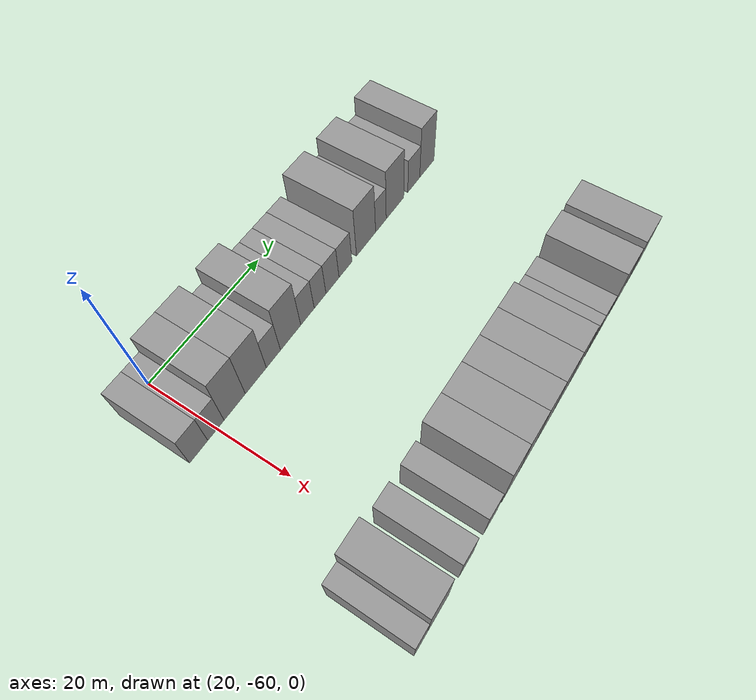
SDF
<sdf version="1.6">
 <world name="default">
  <model name="building_43">
   <static>1</static>
   <pose>25.0000 -63.1115 0 0.000000 0.000000 0.000000</pose>
   <link name="link">
    <pose>0 0 3.00 0 0 0</pose>
    <collision name="collision"><geometry><box><size>10.0000 2.9955 6.0000</size></box></geometry></collision>
    <visual name="visual">
     <cast_shadows>0</cast_shadows>
     <geometry><box><size>10.0000 2.9955 6.0000</size></box></geometry>
     <material>
      <script>
       <uri>model://grey_wall/materials/scripts</uri>
       <uri>model://grey_wall/materials/textures</uri>
       <name>vrc/grey_wall</name>
      </script>
     </material>
    </visual>
   </link>
  </model>
  <model name="building_44">
   <static>1</static>
   <pose>25.0000 -60.2271 0 0.000000 0.000000 0.000000</pose>
   <link name="link">
    <pose>0 0 3.00 0 0 0</pose>
    <collision name="collision"><geometry><box><size>10.0000 2.7734 6.0000</size></box></geometry></collision>
    <visual name="visual">
     <cast_shadows>0</cast_shadows>
     <geometry><box><size>10.0000 2.7734 6.0000</size></box></geometry>
     <material>
      <script>
       <uri>model://grey_wall/materials/scripts</uri>
       <uri>model://grey_wall/materials/textures</uri>
       <name>vrc/grey_wall</name>
      </script>
     </material>
    </visual>
   </link>
  </model>
  <model name="building_45">
   <static>1</static>
   <pose>25.0000 -56.9690 0 0.000000 0.000000 0.000000</pose>
   <link name="link">
    <pose>0 0 4.50 0 0 0</pose>
    <collision name="collision"><geometry><box><size>10.0000 3.7427 9.0000</size></box></geometry></collision>
    <visual name="visual">
     <cast_shadows>0</cast_shadows>
     <geometry><box><size>10.0000 3.7427 9.0000</size></box></geometry>
     <material>
      <script>
       <uri>model://grey_wall/materials/scripts</uri>
       <uri>model://grey_wall/materials/textures</uri>
       <name>vrc/grey_wall</name>
      </script>
     </material>
    </visual>
   </link>
  </model>
  <model name="building_46">
   <static>1</static>
   <pose>25.0000 -53.1813 0 0.000000 0.000000 0.000000</pose>
   <link name="link">
    <pose>0 0 4.50 0 0 0</pose>
    <collision name="collision"><geometry><box><size>10.0000 3.8327 9.0000</size></box></geometry></collision>
    <visual name="visual">
     <cast_shadows>0</cast_shadows>
     <geometry><box><size>10.0000 3.8327 9.0000</size></box></geometry>
     <material>
      <script>
       <uri>model://grey_wall/materials/scripts</uri>
       <uri>model://grey_wall/materials/textures</uri>
       <name>vrc/grey_wall</name>
      </script>
     </material>
    </visual>
   </link>
  </model>
  <model name="building_47">
   <static>1</static>
   <pose>25.0000 -49.9256 0 0.000000 0.000000 0.000000</pose>
   <link name="link">
    <pose>0 0 3.00 0 0 0</pose>
    <collision name="collision"><geometry><box><size>10.0000 2.6787 6.0000</size></box></geometry></collision>
    <visual name="visual">
     <cast_shadows>0</cast_shadows>
     <geometry><box><size>10.0000 2.6787 6.0000</size></box></geometry>
     <material>
      <script>
       <uri>model://grey_wall/materials/scripts</uri>
       <uri>model://grey_wall/materials/textures</uri>
       <name>vrc/grey_wall</name>
      </script>
     </material>
    </visual>
   </link>
  </model>
  <model name="building_48">
   <static>1</static>
   <pose>25.0000 -46.6115 0 0.000000 0.000000 0.000000</pose>
   <link name="link">
    <pose>0 0 4.50 0 0 0</pose>
    <collision name="collision"><geometry><box><size>10.0000 3.9495 9.0000</size></box></geometry></collision>
    <visual name="visual">
     <cast_shadows>0</cast_shadows>
     <geometry><box><size>10.0000 3.9495 9.0000</size></box></geometry>
     <material>
      <script>
       <uri>model://grey_wall/materials/scripts</uri>
       <uri>model://grey_wall/materials/textures</uri>
       <name>vrc/grey_wall</name>
      </script>
     </material>
    </visual>
   </link>
  </model>
  <model name="building_49">
   <static>1</static>
   <pose>25.0000 -43.2790 0 0.000000 0.000000 0.000000</pose>
   <link name="link">
    <pose>0 0 3.00 0 0 0</pose>
    <collision name="collision"><geometry><box><size>10.0000 2.7157 6.0000</size></box></geometry></collision>
    <visual name="visual">
     <cast_shadows>0</cast_shadows>
     <geometry><box><size>10.0000 2.7157 6.0000</size></box></geometry>
     <material>
      <script>
       <uri>model://grey_wall/materials/scripts</uri>
       <uri>model://grey_wall/materials/textures</uri>
       <name>vrc/grey_wall</name>
      </script>
     </material>
    </visual>
   </link>
  </model>
  <model name="building_50">
   <static>1</static>
   <pose>25.0000 -40.7049 0 0.000000 0.000000 0.000000</pose>
   <link name="link">
    <pose>0 0 3.00 0 0 0</pose>
    <collision name="collision"><geometry><box><size>10.0000 2.4325 6.0000</size></box></geometry></collision>
    <visual name="visual">
     <cast_shadows>0</cast_shadows>
     <geometry><box><size>10.0000 2.4325 6.0000</size></box></geometry>
     <material>
      <script>
       <uri>model://grey_wall/materials/scripts</uri>
       <uri>model://grey_wall/materials/textures</uri>
       <name>vrc/grey_wall</name>
      </script>
     </material>
    </visual>
   </link>
  </model>
  <model name="building_51">
   <static>1</static>
   <pose>25.0000 -38.1090 0 0.000000 0.000000 0.000000</pose>
   <link name="link">
    <pose>0 0 3.00 0 0 0</pose>
    <collision name="collision"><geometry><box><size>10.0000 2.7592 6.0000</size></box></geometry></collision>
    <visual name="visual">
     <cast_shadows>0</cast_shadows>
     <geometry><box><size>10.0000 2.7592 6.0000</size></box></geometry>
     <material>
      <script>
       <uri>model://grey_wall/materials/scripts</uri>
       <uri>model://grey_wall/materials/textures</uri>
       <name>vrc/grey_wall</name>
      </script>
     </material>
    </visual>
   </link>
  </model>
  <model name="building_52">
   <static>1</static>
   <pose>25.0000 -35.3297 0 0.000000 0.000000 0.000000</pose>
   <link name="link">
    <pose>0 0 3.00 0 0 0</pose>
    <collision name="collision"><geometry><box><size>10.0000 2.7994 6.0000</size></box></geometry></collision>
    <visual name="visual">
     <cast_shadows>0</cast_shadows>
     <geometry><box><size>10.0000 2.7994 6.0000</size></box></geometry>
     <material>
      <script>
       <uri>model://grey_wall/materials/scripts</uri>
       <uri>model://grey_wall/materials/textures</uri>
       <name>vrc/grey_wall</name>
      </script>
     </material>
    </visual>
   </link>
  </model>
  <model name="building_53">
   <static>1</static>
   <pose>25.0000 -30.7638 0 0.000000 0.000000 0.000000</pose>
   <link name="link">
    <pose>0 0 4.50 0 0 0</pose>
    <collision name="collision"><geometry><box><size>10.0000 4.3325 9.0000</size></box></geometry></collision>
    <visual name="visual">
     <cast_shadows>0</cast_shadows>
     <geometry><box><size>10.0000 4.3325 9.0000</size></box></geometry>
     <material>
      <script>
       <uri>model://grey_wall/materials/scripts</uri>
       <uri>model://grey_wall/materials/textures</uri>
       <name>vrc/grey_wall</name>
      </script>
     </material>
    </visual>
   </link>
  </model>
  <model name="building_54">
   <static>1</static>
   <pose>25.0000 -27.3550 0 0.000000 0.000000 0.000000</pose>
   <link name="link">
    <pose>0 0 3.00 0 0 0</pose>
    <collision name="collision"><geometry><box><size>10.0000 2.4850 6.0000</size></box></geometry></collision>
    <visual name="visual">
     <cast_shadows>0</cast_shadows>
     <geometry><box><size>10.0000 2.4850 6.0000</size></box></geometry>
     <material>
      <script>
       <uri>model://grey_wall/materials/scripts</uri>
       <uri>model://grey_wall/materials/textures</uri>
       <name>vrc/grey_wall</name>
      </script>
     </material>
    </visual>
   </link>
  </model>
  <model name="building_55">
   <static>1</static>
   <pose>25.0000 -24.0081 0 0.000000 0.000000 0.000000</pose>
   <link name="link">
    <pose>0 0 4.50 0 0 0</pose>
    <collision name="collision"><geometry><box><size>10.0000 4.2089 9.0000</size></box></geometry></collision>
    <visual name="visual">
     <cast_shadows>0</cast_shadows>
     <geometry><box><size>10.0000 4.2089 9.0000</size></box></geometry>
     <material>
      <script>
       <uri>model://grey_wall/materials/scripts</uri>
       <uri>model://grey_wall/materials/textures</uri>
       <name>vrc/grey_wall</name>
      </script>
     </material>
    </visual>
   </link>
  </model>
  <model name="building_56">
   <static>1</static>
   <pose>25.0000 -19.4084 0 0.000000 0.000000 0.000000</pose>
   <link name="link">
    <pose>0 0 3.00 0 0 0</pose>
    <collision name="collision"><geometry><box><size>10.0000 2.9904 6.0000</size></box></geometry></collision>
    <visual name="visual">
     <cast_shadows>0</cast_shadows>
     <geometry><box><size>10.0000 2.9904 6.0000</size></box></geometry>
     <material>
      <script>
       <uri>model://grey_wall/materials/scripts</uri>
       <uri>model://grey_wall/materials/textures</uri>
       <name>vrc/grey_wall</name>
      </script>
     </material>
    </visual>
   </link>
  </model>
  <model name="building_57">
   <static>1</static>
   <pose>25.0000 -16.0879 0 0.000000 0.000000 0.000000</pose>
   <link name="link">
    <pose>0 0 4.50 0 0 0</pose>
    <collision name="collision"><geometry><box><size>10.0000 3.6505 9.0000</size></box></geometry></collision>
    <visual name="visual">
     <cast_shadows>0</cast_shadows>
     <geometry><box><size>10.0000 3.6505 9.0000</size></box></geometry>
     <material>
      <script>
       <uri>model://grey_wall/materials/scripts</uri>
       <uri>model://grey_wall/materials/textures</uri>
       <name>vrc/grey_wall</name>
      </script>
     </material>
    </visual>
   </link>
  </model>
  <model name="building_159">
   <static>1</static>
   <pose>55.0000 -66.4008 0 0.000000 0.000000 0.000000</pose>
   <link name="link">
    <pose>0 0 3.00 0 0 0</pose>
    <collision name="collision"><geometry><box><size>10.0000 2.4362 6.0000</size></box></geometry></collision>
    <visual name="visual">
     <cast_shadows>0</cast_shadows>
     <geometry><box><size>10.0000 2.4362 6.0000</size></box></geometry>
     <material>
      <script>
       <uri>model://grey_wall/materials/scripts</uri>
       <uri>model://grey_wall/materials/textures</uri>
       <name>vrc/grey_wall</name>
      </script>
     </material>
    </visual>
   </link>
  </model>
  <model name="building_160">
   <static>1</static>
   <pose>55.0000 -63.2286 0 0.000000 0.000000 0.000000</pose>
   <link name="link">
    <pose>0 0 4.50 0 0 0</pose>
    <collision name="collision"><geometry><box><size>10.0000 3.9082 9.0000</size></box></geometry></collision>
    <visual name="visual">
     <cast_shadows>0</cast_shadows>
     <geometry><box><size>10.0000 3.9082 9.0000</size></box></geometry>
     <material>
      <script>
       <uri>model://grey_wall/materials/scripts</uri>
       <uri>model://grey_wall/materials/textures</uri>
       <name>vrc/grey_wall</name>
      </script>
     </material>
    </visual>
   </link>
  </model>
  <model name="building_161">
   <static>1</static>
   <pose>55.0000 -57.8059 0 0.000000 0.000000 0.000000</pose>
   <link name="link">
    <pose>0 0 3.00 0 0 0</pose>
    <collision name="collision"><geometry><box><size>10.0000 2.9372 6.0000</size></box></geometry></collision>
    <visual name="visual">
     <cast_shadows>0</cast_shadows>
     <geometry><box><size>10.0000 2.9372 6.0000</size></box></geometry>
     <material>
      <script>
       <uri>model://grey_wall/materials/scripts</uri>
       <uri>model://grey_wall/materials/textures</uri>
       <name>vrc/grey_wall</name>
      </script>
     </material>
    </visual>
   </link>
  </model>
  <model name="building_162">
   <static>1</static>
   <pose>55.0000 -52.8782 0 0.000000 0.000000 0.000000</pose>
   <link name="link">
    <pose>0 0 3.00 0 0 0</pose>
    <collision name="collision"><geometry><box><size>10.0000 2.9182 6.0000</size></box></geometry></collision>
    <visual name="visual">
     <cast_shadows>0</cast_shadows>
     <geometry><box><size>10.0000 2.9182 6.0000</size></box></geometry>
     <material>
      <script>
       <uri>model://grey_wall/materials/scripts</uri>
       <uri>model://grey_wall/materials/textures</uri>
       <name>vrc/grey_wall</name>
      </script>
     </material>
    </visual>
   </link>
  </model>
  <model name="building_163">
   <static>1</static>
   <pose>55.0000 -48.6096 0 0.000000 0.000000 0.000000</pose>
   <link name="link">
    <pose>0 0 4.50 0 0 0</pose>
    <collision name="collision"><geometry><box><size>10.0000 3.6191 9.0000</size></box></geometry></collision>
    <visual name="visual">
     <cast_shadows>0</cast_shadows>
     <geometry><box><size>10.0000 3.6191 9.0000</size></box></geometry>
     <material>
      <script>
       <uri>model://grey_wall/materials/scripts</uri>
       <uri>model://grey_wall/materials/textures</uri>
       <name>vrc/grey_wall</name>
      </script>
     </material>
    </visual>
   </link>
  </model>
  <model name="building_164">
   <static>1</static>
   <pose>55.0000 -44.7668 0 0.000000 0.000000 0.000000</pose>
   <link name="link">
    <pose>0 0 4.50 0 0 0</pose>
    <collision name="collision"><geometry><box><size>10.0000 4.0664 9.0000</size></box></geometry></collision>
    <visual name="visual">
     <cast_shadows>0</cast_shadows>
     <geometry><box><size>10.0000 4.0664 9.0000</size></box></geometry>
     <material>
      <script>
       <uri>model://grey_wall/materials/scripts</uri>
       <uri>model://grey_wall/materials/textures</uri>
       <name>vrc/grey_wall</name>
      </script>
     </material>
    </visual>
   </link>
  </model>
  <model name="building_165">
   <static>1</static>
   <pose>55.0000 -40.9135 0 0.000000 0.000000 0.000000</pose>
   <link name="link">
    <pose>0 0 4.50 0 0 0</pose>
    <collision name="collision"><geometry><box><size>10.0000 3.6403 9.0000</size></box></geometry></collision>
    <visual name="visual">
     <cast_shadows>0</cast_shadows>
     <geometry><box><size>10.0000 3.6403 9.0000</size></box></geometry>
     <material>
      <script>
       <uri>model://grey_wall/materials/scripts</uri>
       <uri>model://grey_wall/materials/textures</uri>
       <name>vrc/grey_wall</name>
      </script>
     </material>
    </visual>
   </link>
  </model>
  <model name="building_166">
   <static>1</static>
   <pose>55.0000 -37.1364 0 0.000000 0.000000 0.000000</pose>
   <link name="link">
    <pose>0 0 4.50 0 0 0</pose>
    <collision name="collision"><geometry><box><size>10.0000 3.9138 9.0000</size></box></geometry></collision>
    <visual name="visual">
     <cast_shadows>0</cast_shadows>
     <geometry><box><size>10.0000 3.9138 9.0000</size></box></geometry>
     <material>
      <script>
       <uri>model://grey_wall/materials/scripts</uri>
       <uri>model://grey_wall/materials/textures</uri>
       <name>vrc/grey_wall</name>
      </script>
     </material>
    </visual>
   </link>
  </model>
  <model name="building_167">
   <static>1</static>
   <pose>55.0000 -33.3260 0 0.000000 0.000000 0.000000</pose>
   <link name="link">
    <pose>0 0 4.50 0 0 0</pose>
    <collision name="collision"><geometry><box><size>10.0000 3.7072 9.0000</size></box></geometry></collision>
    <visual name="visual">
     <cast_shadows>0</cast_shadows>
     <geometry><box><size>10.0000 3.7072 9.0000</size></box></geometry>
     <material>
      <script>
       <uri>model://grey_wall/materials/scripts</uri>
       <uri>model://grey_wall/materials/textures</uri>
       <name>vrc/grey_wall</name>
      </script>
     </material>
    </visual>
   </link>
  </model>
  <model name="building_168">
   <static>1</static>
   <pose>55.0000 -29.2318 0 0.000000 0.000000 0.000000</pose>
   <link name="link">
    <pose>0 0 3.00 0 0 0</pose>
    <collision name="collision"><geometry><box><size>10.0000 2.4812 6.0000</size></box></geometry></collision>
    <visual name="visual">
     <cast_shadows>0</cast_shadows>
     <geometry><box><size>10.0000 2.4812 6.0000</size></box></geometry>
     <material>
      <script>
       <uri>model://grey_wall/materials/scripts</uri>
       <uri>model://grey_wall/materials/textures</uri>
       <name>vrc/grey_wall</name>
      </script>
     </material>
    </visual>
   </link>
  </model>
  <model name="building_169">
   <static>1</static>
   <pose>55.0000 -26.5044 0 0.000000 0.000000 0.000000</pose>
   <link name="link">
    <pose>0 0 3.00 0 0 0</pose>
    <collision name="collision"><geometry><box><size>10.0000 2.9734 6.0000</size></box></geometry></collision>
    <visual name="visual">
     <cast_shadows>0</cast_shadows>
     <geometry><box><size>10.0000 2.9734 6.0000</size></box></geometry>
     <material>
      <script>
       <uri>model://grey_wall/materials/scripts</uri>
       <uri>model://grey_wall/materials/textures</uri>
       <name>vrc/grey_wall</name>
      </script>
     </material>
    </visual>
   </link>
  </model>
  <model name="building_170">
   <static>1</static>
   <pose>55.0000 -21.9691 0 0.000000 0.000000 0.000000</pose>
   <link name="link">
    <pose>0 0 4.50 0 0 0</pose>
    <collision name="collision"><geometry><box><size>10.0000 4.0972 9.0000</size></box></geometry></collision>
    <visual name="visual">
     <cast_shadows>0</cast_shadows>
     <geometry><box><size>10.0000 4.0972 9.0000</size></box></geometry>
     <material>
      <script>
       <uri>model://grey_wall/materials/scripts</uri>
       <uri>model://grey_wall/materials/textures</uri>
       <name>vrc/grey_wall</name>
      </script>
     </material>
    </visual>
   </link>
  </model>
  <model name="building_171">
   <static>1</static>
   <pose>55.0000 -16.7852 0 0.000000 0.000000 0.000000</pose>
   <link name="link">
    <pose>0 0 4.50 0 0 0</pose>
    <collision name="collision"><geometry><box><size>10.0000 4.2705 9.0000</size></box></geometry></collision>
    <visual name="visual">
     <cast_shadows>0</cast_shadows>
     <geometry><box><size>10.0000 4.2705 9.0000</size></box></geometry>
     <material>
      <script>
       <uri>model://grey_wall/materials/scripts</uri>
       <uri>model://grey_wall/materials/textures</uri>
       <name>vrc/grey_wall</name>
      </script>
     </material>
    </visual>
   </link>
  </model>
 </world>
</sdf>
